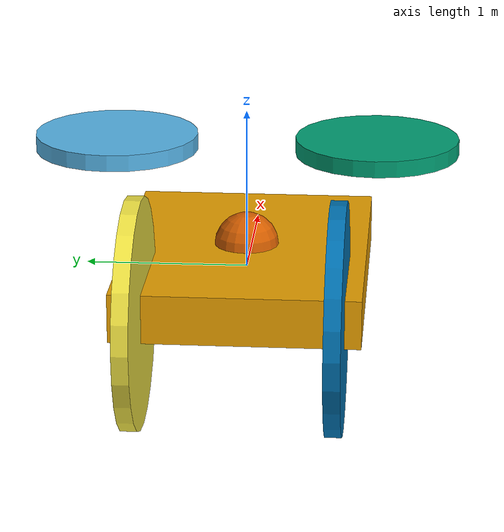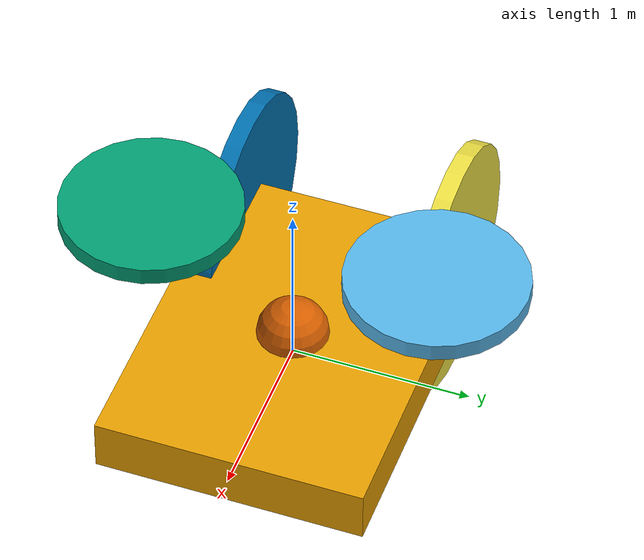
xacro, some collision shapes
<?xml version="1.0"?>

<robot xmlns:xacro="http://www.ros.org/wiki/xacro" name="my_robot">

    <xacro:include filename="$(find tutorial)/urdf/arm.xacro" />
    <xacro:include filename="$(find tutorial)/urdf/head.xacro" />
    <xacro:include filename="$(find tutorial)/urdf/back_arm.xacro" />
    <link name="base_link">
        <visual>
            <geometry>
                <box size="2 1.5 0.3"/>
            </geometry>
        </visual>
        <collision>
            <geometry>
                <box size="2 1.5 0.3"/>
            </geometry>
        </collision>
        <inertial>
            <mass value="1"/>
            <inertia ixx="0.21" ixy="0" ixz="0" iyy="0.27" iyz="0" izz="0.10"/>
        </inertial>
    </link>

    <xacro:arm prefix="right" length=".1" radius="0.5" reflect="1" />
    <xacro:arm prefix="left" length=".1" radius="0.5" reflect="-1" />
    <xacro:back_arm prefix="right" length=".1" radius="0.7" reflect="1" />
    <xacro:back_arm prefix="left" length=".1" radius="0.7" reflect="-1" />
    <xacro:head />

    <!-- Add ROS plugin so we can interact with our robot -->
    <gazebo>
        <plugin name="gazebo_ros_control" filename="libgazebo_ros_control.so">
            <robotNamespace>/</robotNamespace>
        </plugin>
    </gazebo>
</robot>

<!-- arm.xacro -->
<robot xmlns:xacro="http://www.ros.org/wiki/xacro" name="my_robot">
<xacro:macro name="arm" params="prefix radius length reflect">

    <!-- rpy (roll pitch yaw) describes rotation in radians -->
    <!-- xyz describes translation in meters -->
    <link name="${prefix}_arm">
        <visual>
            <origin rpy="0 0 0" xyz="0 0 0.8"/> <!-- set the origin to 0 to recenter the link to the child_frame -->
            <geometry>
                <cylinder length="${length}" radius="${radius}"/>
            </geometry>
        </visual>
        <collision>
            <origin rpy="0 0 0" xyz="0 0 0.8"/> <!-- set the origin to 0 to recenter the link to the child_frame -->
            <geometry>
                <cylinder length="${length}" radius="${radius}"/>
            </geometry>
        </collision>
        <inertial>
            <origin rpy="0 0 0" xyz="0 0 0.8"/> <!-- set the origin to 0 to recenter the link to the child_frame -->
            <mass value="1"/>
            <inertia ixx="0.06" ixy="0.0" ixz="0.0" iyy="0.06" iyz="0.0" izz="0.25"/>
        </inertial>
    </link>

    <joint name="base_to_${prefix}_arm" type="continuous">
        <axis xyz="0 1 0"/>
        <parent link="base_link"/>
        <child link="${prefix}_arm"/>
        <origin rpy="0 0 0" xyz="0 ${reflect*0.8} 0"/> <!-- move the child_frame with respect to parent_frame -->
        <limit effort="30" velocity="1.0"/>
    </joint>

    <transmission name="${prefix}_arm_transmission">
        <type>transmission_interface/SimpleTransmission</type>
        <actuator name="$${prefix}_motor">
            <mechanicalReduction>1</mechanicalReduction>
        </actuator>
        <joint name="base_to_${prefix}_arm">
            <hardwareInterface>hardware_interface/VelocityJointInterface</hardwareInterface>
        </joint>
    </transmission>

</xacro:macro>
</robot>

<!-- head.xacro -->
<robot xmlns:xacro="http://www.ros.org/wiki/xacro" name="my_robot">
<xacro:macro name="head">

    <link name="head_link">
        <visual>
            <origin rpy="0 0 0" xyz="0 0 0"/>
            <geometry>
                <mesh filename="package://tutorial/urdf/head.dae" scale="5 5 5"/>
            </geometry>
        </visual>
        <collision>
            <origin rpy="0 0 0" xyz="0 0 0"/>
            <geometry>
                <sphere radius=".2"/>
            </geometry>
        </collision>
        <inertial>
            <origin rpy="0 0 0" xyz="0 0 0"/>
            <mass value="1"/>
            <inertia ixx="0.03" ixy="0.0" ixz="0.0" iyy="0.03" iyz="0.0" izz="0.03"/>
        </inertial>
    </link>

    <joint name="base_to_head" type="continuous">
        <axis xyz="0 0 1"/>  <!-- changes axis of rotation -->
        <parent link="base_link"/>
        <child link="head_link"/>
        <origin rpy="0 0 0" xyz="0 0 .145"/> <!-- moves the child_frame with respect to parent_frame -->
        <limit effort="30" velocity="1.0"/>
    </joint>

    <transmission name="head_transmission">
        <type>transmission_interface/SimpleTransmission</type>
        <actuator name="$head_motor">
            <mechanicalReduction>1</mechanicalReduction>
        </actuator>
        <joint name="base_to_head">
            <hardwareInterface>hardware_interface/PositionJointInterface</hardwareInterface>
        </joint>
    </transmission>

</xacro:macro>
</robot>

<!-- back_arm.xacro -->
<robot xmlns:xacro="http://www.ros.org/wiki/xacro" name="my_robot">
<xacro:macro name="back_arm" params="prefix radius length reflect">

    <!-- rpy (roll pitch yaw) describes rotation in radians -->
    <!-- xyz describes translation in meters -->
    <link name="${prefix}_back_arm">
        <visual>
            <origin rpy="0 1.57 1.57" xyz="0 0 0"/> <!-- set the origin to 0 to recenter the link to the child_frame -->
            <geometry>
                <cylinder length="${length}" radius="${radius}"/>
            </geometry>
        </visual>
        <collision>
            <origin rpy="0 1.57 1.57" xyz="0 0 0"/> <!-- set the origin to 0 to recenter the link to the child_frame -->
            <geometry>
                <cylinder length="${length}" radius="${radius}"/>
            </geometry>
        </collision>
        <inertial>
            <origin rpy="0 1.57 1.57" xyz="0 0 0"/> <!-- set the origin to 0 to recenter the link to the child_frame -->
            <mass value="1"/>
            <inertia ixx="0.06" ixy="0.0" ixz="0.0" iyy="0.06" iyz="0.0" izz="0.25"/>
        </inertial>
    </link>

    <joint name="base_to_${prefix}_back_arm" type="continuous">
        <axis xyz="0 1 0"/>
        <parent link="base_link"/>
        <child link="${prefix}_back_arm"/>
        <origin rpy="0 0 0" xyz="-0.9 ${reflect*0.6} 0"/> <!-- move the child_frame with respect to parent_frame -->
        <limit effort="30" velocity="2.0"/>
    </joint>

    <transmission name="${prefix}_back_arm_transmission">
        <type>transmission_interface/SimpleTransmission</type>
        <actuator name="$${prefix}_motor">
            <mechanicalReduction>1</mechanicalReduction>
        </actuator>
        <joint name="base_to_${prefix}_back_arm">
            <hardwareInterface>hardware_interface/VelocityJointInterface</hardwareInterface>
        </joint>
    </transmission>

</xacro:macro>
</robot>
